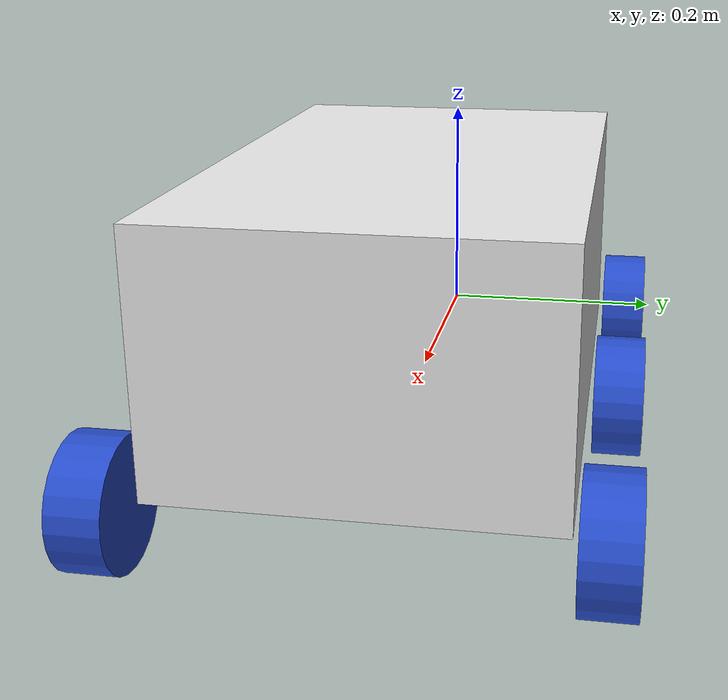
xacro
<?xml version="1.0"?>

<robot xmlns:xacro="http://ros.org/wiki/xacro">

    <!-- CHASSIS LINK -->
    <link name="chassis">
        <visual>
            <origin xyz="0.25 0.0 0.1"/>
            <geometry>
                <box size="0.5 0.3 0.2"/>
            </geometry>
            <material name="white"/>
        </visual>
        <collision>
            <origin xyz="0.25 0.0 0.1"/>
            <geometry>
                <box size="0.5 0.3 0.2"/>
            </geometry>
        </collision>
    </link>

    <!-- LEFT WHEELS LINK -->

    <!-- Rear -->
    <joint name="left_wheel_rear_joint" type="continuous">
        <parent link="chassis"/>
        <child link="left_wheel_rear"/>
        <origin xyz="0.0 0.175 0.0" rpy="-${pi/2} 0.0 0.0"/>
        <axis xyz="0.0 0.0 1.0"/>
    </joint>

    <link name="left_wheel_rear">
        <visual>
            <geometry>
                <cylinder radius="0.05" length="0.04"/>
            </geometry>
            <material name="blue"/>
        </visual>
        <collision>
            <geometry>
                <cylinder radius="0.05" length="0.04"/>
            </geometry>
        </collision>
    </link>

    <!-- middle -->
    <joint name="left_wheel_middle_joint" type="continuous">
        <parent link="chassis"/>
        <child link="left_wheel_middle"/>
        <origin xyz="0.25 0.175 0.0" rpy="-${pi/2} 0.0 0.0"/>
        <axis xyz="0.0 0.0 1.0"/>
    </joint>

    <link name="left_wheel_middle">
        <visual>
            <geometry>
                <cylinder radius="0.05" length="0.04"/>
            </geometry>
            <material name="blue"/>
        </visual>
        <collision>
            <geometry>
                <cylinder radius="0.05" length="0.04"/>
            </geometry>
        </collision>
    </link>

    <!-- front -->
    <joint name="left_wheel_front_joint" type="continuous">
        <parent link="chassis"/>
        <child link="left_wheel_front"/>
        <origin xyz="0.5 0.175 0.0" rpy="-${pi/2} 0.0 0.0"/>
        <axis xyz="0.0 0.0 1.0"/>
    </joint>

    <link name="left_wheel_front">
        <visual>
            <geometry>
                <cylinder radius="0.05" length="0.04"/>
            </geometry>
            <material name="blue"/>
        </visual>
        <collision>
            <geometry>
                <cylinder radius="0.05" length="0.04"/>
            </geometry>
        </collision>
    </link>
    <!-- right WHEELS LINK -->

    <!-- Rear -->
    <joint name="right_wheel_rear_joint" type="continuous">
        <parent link="chassis"/>
        <child link="right_wheel_rear"/>
        <origin xyz="0.0 -0.175 0.0" rpy="${pi/2} 0.0 0.0"/>
        <axis xyz="0.0 0.0 -1.0"/>
    </joint>

    <link name="right_wheel_rear">
        <visual>
            <geometry>
                <cylinder radius="0.05" length="0.04"/>
            </geometry>
            <material name="blue"/>
        </visual>
        <collision>
            <geometry>
                <cylinder radius="0.05" length="0.04"/>
            </geometry>
        </collision>
    </link>

    <!-- middle -->
    <joint name="right_wheel_middle_joint" type="continuous">
        <parent link="chassis"/>
        <child link="right_wheel_middle"/>
        <origin xyz="0.25 -0.175 0.0" rpy="${pi/2} 0.0 0.0"/>
        <axis xyz="0.0 0.0 -1.0"/>
    </joint>

    <link name="right_wheel_middle">
        <visual>
            <geometry>
                <cylinder radius="0.05" length="0.04"/>
            </geometry>
            <material name="blue"/>
        </visual>
        <collision>
            <geometry>
                <cylinder radius="0.05" length="0.04"/>
            </geometry>
        </collision>
    </link>

    <!-- front -->
    <joint name="right_wheel_front_joint" type="continuous">
        <parent link="chassis"/>
        <child link="right_wheel_front"/>
        <origin xyz="0.5 -0.175 0.0" rpy="${pi/2} 0.0 0.0"/>
        <axis xyz="0.0 0.0 -1.0"/>
    </joint>

    <link name="right_wheel_front">
        <visual>
            <geometry>
                <cylinder radius="0.05" length="0.04"/>
            </geometry>
            <material name="blue"/>
        </visual>
        <collision>
            <geometry>
                <cylinder radius="0.05" length="0.04"/>
            </geometry>
        </collision>
    </link>
</robot>
